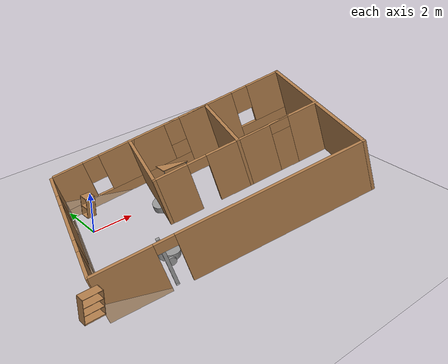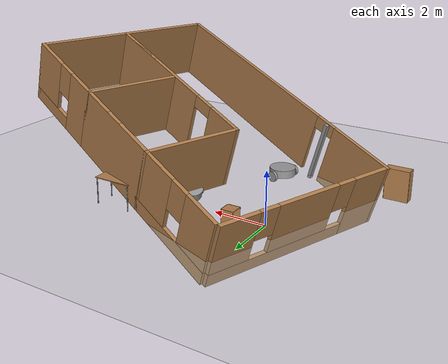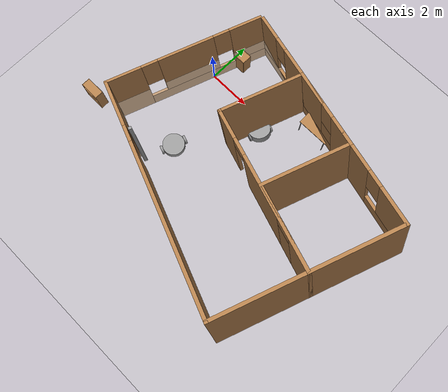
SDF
<sdf version="1.6">
 <world name="default">
  <plugin name="hello" filename="libhello.so"/>
  <light name="sun" type="directional">
   <pose>0 0 10 0 -0 0</pose>
   <diffuse>0.8 0.8 0.8 1</diffuse>
   <specular>0.2 0.2 0.2 1</specular>
   <attenuation>
    <range>1000</range>
    <constant>0.9</constant>
    <linear>0.01</linear>
    <quadratic>0.001</quadratic>
   </attenuation>
   <direction>-0.5 0.1 -0.9</direction>
  </light>
  <model name="ground_plane">
   <static>1</static>
   <link name="link">
    <collision name="collision">
     <geometry><plane><normal>0 0 1</normal><size>100 100</size></plane></geometry>
     <surface>
      <contact><collide_bitmask>65535</collide_bitmask></contact>
      <friction><ode><mu>100</mu><mu2>50</mu2></ode></friction>
     </surface>
    </collision>
    <visual name="visual">
     <cast_shadows>0</cast_shadows>
     <geometry><plane><normal>0 0 1</normal><size>100 100</size></plane></geometry>
     <material>
      <script><uri>file://media/materials/scripts/gazebo.material</uri><name>Gazebo/Grey</name></script>
     </material>
    </visual>
   </link>
  </model>
  <gravity>0 0 -9.8</gravity>
  <magnetic_field>6e-06 2.3e-05 -4.2e-05</magnetic_field>
  <atmosphere type="adiabatic"/>
  <physics name="default_physics" default="0" type="ode">
   <max_step_size>0.001</max_step_size>
   <real_time_factor>1</real_time_factor>
   <real_time_update_rate>1000</real_time_update_rate>
  </physics>
  <scene><ambient>0.4 0.4 0.4 1</ambient><background>0.7 0.7 0.7 1</background><shadows>1</shadows></scene>
  <spherical_coordinates>
   <surface_model>EARTH_WGS84</surface_model>
   <latitude_deg>0</latitude_deg>
   <longitude_deg>0</longitude_deg>
   <elevation>0</elevation>
   <heading_deg>0</heading_deg>
  </spherical_coordinates>
  <model name="model_0">
   <link name="link_1">
    <pose>-0.541361 0.667486 0.5125 -0 -0 -0</pose>
    <inertial>
     <mass>1</mass>
     <inertia><ixx>0.145833</ixx><ixy>0</ixy><ixz>0</ixz><iyy>0.145833</iyy><iyz>0</iyz><izz>0.125</izz></inertia>
    </inertial>
    <visual name="visual">
     <geometry><cylinder><radius>0.5</radius><length>0.3</length></cylinder></geometry>
     <material>
      <lighting>1</lighting>
      <script><uri>file://media/materials/scripts/gazebo.material</uri><name>Gazebo/Grey</name></script>
      <shader type="pixel"><normal_map>__default__</normal_map></shader>
      <ambient>0.3 0.3 0.3 1</ambient>
      <diffuse>0.7 0.7 0.7 1</diffuse>
      <specular>0.01 0.01 0.01 1</specular>
      <emissive>0 0 0 1</emissive>
     </material>
    </visual>
    <collision name="collision">
     <geometry><cylinder><radius>0.5</radius><length>0.3</length></cylinder></geometry>
     <surface>
      <friction>
       <ode><mu>1</mu><mu2>1</mu2><fdir1>0 0 0</fdir1><slip1>0</slip1><slip2>0</slip2></ode>
       <torsional>
        <coefficient>1</coefficient>
        <patch_radius>0</patch_radius>
        <surface_radius>0</surface_radius>
        <use_patch_radius>1</use_patch_radius>
        <ode><slip>0</slip></ode>
       </torsional>
      </friction>
      <bounce><restitution_coefficient>0</restitution_coefficient><threshold>1e+06</threshold></bounce>
      <contact>
       <collide_without_contact>0</collide_without_contact>
       <collide_without_contact_bitmask>1</collide_without_contact_bitmask>
       <collide_bitmask>1</collide_bitmask>
       <ode>
        <soft_cfm>0</soft_cfm>
        <soft_erp>0.2</soft_erp>
        <kp>1e+13</kp>
        <kd>1</kd>
        <max_vel>0.01</max_vel>
        <min_depth>0</min_depth>
       </ode>
       <bullet>
        <split_impulse>1</split_impulse>
        <split_impulse_penetration_threshold>-0.01</split_impulse_penetration_threshold>
        <soft_cfm>0</soft_cfm>
        <soft_erp>0.2</soft_erp>
        <kp>1e+13</kp>
        <kd>1</kd>
       </bullet>
      </contact>
     </surface>
    </collision>
   </link>
   <link name="link_1_clone">
    <pose>-1.4209 -3.11273 0.992718 0.000928 0.309661 0.003044</pose>
    <inertial>
     <mass>1</mass>
     <inertia><ixx>0.145833</ixx><ixy>0</ixy><ixz>0</ixz><iyy>0.145833</iyy><iyz>0</iyz><izz>0.125</izz></inertia>
    </inertial>
    <visual name="visual">
     <geometry><cylinder><radius>0.5</radius><length>0.3</length></cylinder></geometry>
     <material>
      <lighting>1</lighting>
      <script><uri>file://media/materials/scripts/gazebo.material</uri><name>Gazebo/Grey</name></script>
      <shader type="pixel"><normal_map>__default__</normal_map></shader>
      <ambient>0.3 0.3 0.3 1</ambient>
      <diffuse>0.7 0.7 0.7 1</diffuse>
      <specular>0.01 0.01 0.01 1</specular>
      <emissive>0 0 0 1</emissive>
     </material>
    </visual>
    <collision name="collision">
     <geometry><cylinder><radius>0.5</radius><length>0.3</length></cylinder></geometry>
     <surface>
      <friction>
       <ode><mu>1</mu><mu2>1</mu2><fdir1>0 0 0</fdir1><slip1>0</slip1><slip2>0</slip2></ode>
       <torsional>
        <coefficient>1</coefficient>
        <patch_radius>0</patch_radius>
        <surface_radius>0</surface_radius>
        <use_patch_radius>1</use_patch_radius>
        <ode><slip>0</slip></ode>
       </torsional>
      </friction>
      <bounce><restitution_coefficient>0</restitution_coefficient><threshold>1e+06</threshold></bounce>
      <contact>
       <collide_without_contact>0</collide_without_contact>
       <collide_without_contact_bitmask>1</collide_without_contact_bitmask>
       <collide_bitmask>1</collide_bitmask>
       <ode>
        <soft_cfm>0</soft_cfm>
        <soft_erp>0.2</soft_erp>
        <kp>1e+13</kp>
        <kd>1</kd>
        <max_vel>0.01</max_vel>
        <min_depth>0</min_depth>
       </ode>
       <bullet>
        <split_impulse>1</split_impulse>
        <split_impulse_penetration_threshold>-0.01</split_impulse_penetration_threshold>
        <soft_cfm>0</soft_cfm>
        <soft_erp>0.2</soft_erp>
        <kp>1e+13</kp>
        <kd>1</kd>
       </bullet>
      </contact>
     </surface>
    </collision>
   </link>
   <link name="link_2">
    <pose>-0.541361 1.16749 0.4125 1.5707 -0 0</pose>
    <inertial>
     <mass>1</mass>
     <inertia><ixx>0.145833</ixx><ixy>0</ixy><ixz>0</ixz><iyy>0.145833</iyy><iyz>0</iyz><izz>0.125</izz></inertia>
    </inertial>
    <visual name="visual">
     <geometry><cylinder><radius>0.2</radius><length>0.1</length></cylinder></geometry>
     <material>
      <lighting>1</lighting>
      <script><uri>file://media/materials/scripts/gazebo.material</uri><name>Gazebo/Grey</name></script>
      <shader type="pixel"><normal_map>__default__</normal_map></shader>
      <ambient>0.3 0.3 0.3 1</ambient>
      <diffuse>0.7 0.7 0.7 1</diffuse>
      <specular>0.01 0.01 0.01 1</specular>
      <emissive>0 0 0 1</emissive>
     </material>
    </visual>
    <collision name="collision">
     <geometry><cylinder><radius>0.2</radius><length>0.1</length></cylinder></geometry>
     <surface>
      <friction>
       <ode><mu>1</mu><mu2>1</mu2><fdir1>0 0 0</fdir1><slip1>0</slip1><slip2>0</slip2></ode>
       <torsional>
        <coefficient>1</coefficient>
        <patch_radius>0</patch_radius>
        <surface_radius>0</surface_radius>
        <use_patch_radius>1</use_patch_radius>
        <ode><slip>0</slip></ode>
       </torsional>
      </friction>
      <bounce><restitution_coefficient>0</restitution_coefficient><threshold>1e+06</threshold></bounce>
      <contact>
       <collide_without_contact>0</collide_without_contact>
       <collide_without_contact_bitmask>1</collide_without_contact_bitmask>
       <collide_bitmask>1</collide_bitmask>
       <ode>
        <soft_cfm>0</soft_cfm>
        <soft_erp>0.2</soft_erp>
        <kp>1e+13</kp>
        <kd>1</kd>
        <max_vel>0.01</max_vel>
        <min_depth>0</min_depth>
       </ode>
       <bullet>
        <split_impulse>1</split_impulse>
        <split_impulse_penetration_threshold>-0.01</split_impulse_penetration_threshold>
        <soft_cfm>0</soft_cfm>
        <soft_erp>0.2</soft_erp>
        <kp>1e+13</kp>
        <kd>1</kd>
       </bullet>
      </contact>
     </surface>
    </collision>
   </link>
   <link name="link_2_clone_0">
    <pose>-0.541361 0.167486 0.4125 1.5707 -0 0</pose>
    <inertial>
     <mass>1</mass>
     <inertia><ixx>0.145833</ixx><ixy>0</ixy><ixz>0</ixz><iyy>0.145833</iyy><iyz>0</iyz><izz>0.125</izz></inertia>
    </inertial>
    <visual name="visual">
     <geometry><cylinder><radius>0.2</radius><length>0.1</length></cylinder></geometry>
     <material>
      <lighting>1</lighting>
      <script><uri>file://media/materials/scripts/gazebo.material</uri><name>Gazebo/Grey</name></script>
      <shader type="pixel"><normal_map>__default__</normal_map></shader>
      <ambient>0.3 0.3 0.3 1</ambient>
      <diffuse>0.7 0.7 0.7 1</diffuse>
      <specular>0.01 0.01 0.01 1</specular>
      <emissive>0 0 0 1</emissive>
     </material>
    </visual>
    <collision name="collision">
     <geometry><cylinder><radius>0.2</radius><length>0.1</length></cylinder></geometry>
     <surface>
      <friction>
       <ode><mu>1</mu><mu2>1</mu2><fdir1>0 0 0</fdir1><slip1>0</slip1><slip2>0</slip2></ode>
       <torsional>
        <coefficient>1</coefficient>
        <patch_radius>0</patch_radius>
        <surface_radius>0</surface_radius>
        <use_patch_radius>1</use_patch_radius>
        <ode><slip>0</slip></ode>
       </torsional>
      </friction>
      <bounce><restitution_coefficient>0</restitution_coefficient><threshold>1e+06</threshold></bounce>
      <contact>
       <collide_without_contact>0</collide_without_contact>
       <collide_without_contact_bitmask>1</collide_without_contact_bitmask>
       <collide_bitmask>1</collide_bitmask>
       <ode>
        <soft_cfm>0</soft_cfm>
        <soft_erp>0.2</soft_erp>
        <kp>1e+13</kp>
        <kd>1</kd>
        <max_vel>0.01</max_vel>
        <min_depth>0</min_depth>
       </ode>
       <bullet>
        <split_impulse>1</split_impulse>
        <split_impulse_penetration_threshold>-0.01</split_impulse_penetration_threshold>
        <soft_cfm>0</soft_cfm>
        <soft_erp>0.2</soft_erp>
        <kp>1e+13</kp>
        <kd>1</kd>
       </bullet>
      </contact>
     </surface>
    </collision>
   </link>
   <link name="link_2_clone_0_clone">
    <pose>-1.4977 -3.6629 0.912299 1.57163 0.30966 0.003044</pose>
    <inertial>
     <mass>1</mass>
     <inertia><ixx>0.145833</ixx><ixy>0</ixy><ixz>0</ixz><iyy>0.145833</iyy><iyz>0</iyz><izz>0.125</izz></inertia>
    </inertial>
    <visual name="visual">
     <geometry><cylinder><radius>0.2</radius><length>0.1</length></cylinder></geometry>
     <material>
      <lighting>1</lighting>
      <script><uri>file://media/materials/scripts/gazebo.material</uri><name>Gazebo/Grey</name></script>
      <shader type="pixel"><normal_map>__default__</normal_map></shader>
      <ambient>0.3 0.3 0.3 1</ambient>
      <diffuse>0.7 0.7 0.7 1</diffuse>
      <specular>0.01 0.01 0.01 1</specular>
      <emissive>0 0 0 1</emissive>
     </material>
    </visual>
    <collision name="collision">
     <geometry><cylinder><radius>0.2</radius><length>0.1</length></cylinder></geometry>
     <surface>
      <friction>
       <ode><mu>1</mu><mu2>1</mu2><fdir1>0 0 0</fdir1><slip1>0</slip1><slip2>0</slip2></ode>
       <torsional>
        <coefficient>1</coefficient>
        <patch_radius>0</patch_radius>
        <surface_radius>0</surface_radius>
        <use_patch_radius>1</use_patch_radius>
        <ode><slip>0</slip></ode>
       </torsional>
      </friction>
      <bounce><restitution_coefficient>0</restitution_coefficient><threshold>1e+06</threshold></bounce>
      <contact>
       <collide_without_contact>0</collide_without_contact>
       <collide_without_contact_bitmask>1</collide_without_contact_bitmask>
       <collide_bitmask>1</collide_bitmask>
       <ode>
        <soft_cfm>0</soft_cfm>
        <soft_erp>0.2</soft_erp>
        <kp>1e+13</kp>
        <kd>1</kd>
        <max_vel>0.01</max_vel>
        <min_depth>0</min_depth>
       </ode>
       <bullet>
        <split_impulse>1</split_impulse>
        <split_impulse_penetration_threshold>-0.01</split_impulse_penetration_threshold>
        <soft_cfm>0</soft_cfm>
        <soft_erp>0.2</soft_erp>
        <kp>1e+13</kp>
        <kd>1</kd>
       </bullet>
      </contact>
     </surface>
    </collision>
   </link>
   <link name="link_2_clone_0_clone_0">
    <pose>-1.50568 -2.56288 0.914854 1.57163 0.30966 0.003044</pose>
    <inertial>
     <mass>1</mass>
     <inertia><ixx>0.145833</ixx><ixy>0</ixy><ixz>0</ixz><iyy>0.145833</iyy><iyz>0</iyz><izz>0.125</izz></inertia>
    </inertial>
    <visual name="visual">
     <geometry><cylinder><radius>0.2</radius><length>0.1</length></cylinder></geometry>
     <material>
      <lighting>1</lighting>
      <script><uri>file://media/materials/scripts/gazebo.material</uri><name>Gazebo/Grey</name></script>
      <shader type="pixel"><normal_map>__default__</normal_map></shader>
      <ambient>0.3 0.3 0.3 1</ambient>
      <diffuse>0.7 0.7 0.7 1</diffuse>
      <specular>0.01 0.01 0.01 1</specular>
      <emissive>0 0 0 1</emissive>
     </material>
    </visual>
    <collision name="collision">
     <geometry><cylinder><radius>0.2</radius><length>0.1</length></cylinder></geometry>
     <surface>
      <friction>
       <ode><mu>1</mu><mu2>1</mu2><fdir1>0 0 0</fdir1><slip1>0</slip1><slip2>0</slip2></ode>
       <torsional>
        <coefficient>1</coefficient>
        <patch_radius>0</patch_radius>
        <surface_radius>0</surface_radius>
        <use_patch_radius>1</use_patch_radius>
        <ode><slip>0</slip></ode>
       </torsional>
      </friction>
      <bounce><restitution_coefficient>0</restitution_coefficient><threshold>1e+06</threshold></bounce>
      <contact>
       <collide_without_contact>0</collide_without_contact>
       <collide_without_contact_bitmask>1</collide_without_contact_bitmask>
       <collide_bitmask>1</collide_bitmask>
       <ode>
        <soft_cfm>0</soft_cfm>
        <soft_erp>0.2</soft_erp>
        <kp>1e+13</kp>
        <kd>1</kd>
        <max_vel>0.01</max_vel>
        <min_depth>0</min_depth>
       </ode>
       <bullet>
        <split_impulse>1</split_impulse>
        <split_impulse_penetration_threshold>-0.01</split_impulse_penetration_threshold>
        <soft_cfm>0</soft_cfm>
        <soft_erp>0.2</soft_erp>
        <kp>1e+13</kp>
        <kd>1</kd>
       </bullet>
      </contact>
     </surface>
    </collision>
   </link>
   <model name="model">
    <pose>1.26807 -0.87112 0.4625 -0 -0 -0</pose>
    <link name="Wall_11">
     <pose>0 -3.85 0 0 -0 0</pose>
     <visual name="Wall_11_Visual_0">
      <pose>-4.61809 0 1.25 0 -0 0</pose>
      <geometry><box><size>2.76382 0.15 2.5</size></box></geometry>
      <material>
       <script><uri>file://media/materials/scripts/gazebo.material</uri><name>Gazebo/Wood</name></script>
       <ambient>1 1 1 1</ambient>
      </material>
      <meta><layer>0</layer></meta>
     </visual>
     <collision name="Wall_11_Collision_0">
      <geometry><box><size>2.76382 0.15 2.5</size></box></geometry>
      <pose>-4.61809 0 1.25 0 -0 0</pose>
     </collision>
     <visual name="Wall_11_Visual_1">
      <pose>1.83191 0 1.25 0 -0 0</pose>
      <geometry><box><size>8.33618 0.15 2.5</size></box></geometry>
      <material>
       <script><uri>file://media/materials/scripts/gazebo.material</uri><name>Gazebo/Wood</name></script>
       <ambient>1 1 1 1</ambient>
      </material>
      <meta><layer>0</layer></meta>
     </visual>
     <collision name="Wall_11_Collision_1">
      <geometry><box><size>8.33618 0.15 2.5</size></box></geometry>
      <pose>1.83191 0 1.25 0 -0 0</pose>
     </collision>
     <visual name="Wall_11_Visual_2">
      <pose>-2.78618 0 2.25 0 -0 0</pose>
      <geometry><box><size>0.9 0.15 0.5</size></box></geometry>
      <material>
       <script><uri>file://media/materials/scripts/gazebo.material</uri><name>Gazebo/Wood</name></script>
       <ambient>1 1 1 1</ambient>
      </material>
      <meta><layer>0</layer></meta>
     </visual>
     <collision name="Wall_11_Collision_2">
      <geometry><box><size>0.9 0.15 0.5</size></box></geometry>
      <pose>-2.78618 0 2.25 0 -0 0</pose>
     </collision>
    </link>
    <link name="Wall_12">
     <collision name="Wall_12_Collision">
      <geometry><box><size>4 0.15 2.5</size></box></geometry>
      <pose>0 0 1.25 0 -0 0</pose>
     </collision>
     <visual name="Wall_12_Visual">
      <pose>0 0 1.25 0 -0 0</pose>
      <geometry><box><size>4 0.15 2.5</size></box></geometry>
      <material>
       <script><uri>file://media/materials/scripts/gazebo.material</uri><name>Gazebo/Wood</name></script>
       <ambient>1 1 1 1</ambient>
      </material>
      <meta><layer>0</layer></meta>
     </visual>
     <pose>5.925 -1.925 0 0 -0 1.5708</pose>
    </link>
    <link name="Wall_13">
     <collision name="Wall_13_Collision">
      <geometry><box><size>4 0.15 2.5</size></box></geometry>
      <pose>0 0 1.25 0 -0 0</pose>
     </collision>
     <visual name="Wall_13_Visual">
      <pose>0 0 1.25 0 -0 0</pose>
      <geometry><box><size>4 0.15 2.5</size></box></geometry>
      <material>
       <script><uri>file://media/materials/scripts/gazebo.material</uri><name>Gazebo/Wood</name></script>
       <ambient>1 1 1 1</ambient>
      </material>
      <meta><layer>0</layer></meta>
     </visual>
     <pose>4 0 0 0 -0 3.14159</pose>
    </link>
    <link name="Wall_14">
     <collision name="Wall_14_Collision">
      <geometry><box><size>4 0.15 2.5</size></box></geometry>
      <pose>0 0 1.25 0 -0 0</pose>
     </collision>
     <visual name="Wall_14_Visual">
      <pose>0 0 1.25 0 -0 0</pose>
      <geometry><box><size>4 0.15 2.5</size></box></geometry>
      <material>
       <script><uri>file://media/materials/scripts/gazebo.material</uri><name>Gazebo/Wood</name></script>
       <ambient>1 1 1 1</ambient>
      </material>
      <meta><layer>0</layer></meta>
     </visual>
     <pose>2.075 1.925 0 0 -0 1.5708</pose>
    </link>
    <link name="Wall_15">
     <pose>4 3.85 0 0 -0 0</pose>
     <visual name="Wall_15_Visual_0">
      <pose>-1.28136 0 1.25 0 -0 0</pose>
      <geometry><box><size>1.43727 0.15 2.5</size></box></geometry>
      <material>
       <script><uri>file://media/materials/scripts/gazebo.material</uri><name>Gazebo/Wood</name></script>
       <ambient>1 1 1 1</ambient>
      </material>
      <meta><layer>0</layer></meta>
     </visual>
     <collision name="Wall_15_Collision_0">
      <geometry><box><size>1.43727 0.15 2.5</size></box></geometry>
      <pose>-1.28136 0 1.25 0 -0 0</pose>
     </collision>
     <visual name="Wall_15_Visual_1">
      <pose>0.718636 0 0.25 0 -0 0</pose>
      <geometry><box><size>2.56273 0.15 0.5</size></box></geometry>
      <material>
       <script><uri>file://media/materials/scripts/gazebo.material</uri><name>Gazebo/Wood</name></script>
       <ambient>1 1 1 1</ambient>
      </material>
      <meta><layer>0</layer></meta>
     </visual>
     <collision name="Wall_15_Collision_1">
      <geometry><box><size>2.56273 0.15 0.5</size></box></geometry>
      <pose>0.718636 0 0.25 0 -0 0</pose>
     </collision>
     <visual name="Wall_15_Visual_2">
      <pose>1.11864 0 1.5 0 -0 0</pose>
      <geometry><box><size>1.76273 0.15 2</size></box></geometry>
      <material>
       <script><uri>file://media/materials/scripts/gazebo.material</uri><name>Gazebo/Wood</name></script>
       <ambient>1 1 1 1</ambient>
      </material>
      <meta><layer>0</layer></meta>
     </visual>
     <collision name="Wall_15_Collision_2">
      <geometry><box><size>1.76273 0.15 2</size></box></geometry>
      <pose>1.11864 0 1.5 0 -0 0</pose>
     </collision>
     <visual name="Wall_15_Visual_3">
      <pose>-0.162727 0 1.9 0 -0 0</pose>
      <geometry><box><size>0.8 0.15 1.2</size></box></geometry>
      <material>
       <script><uri>file://media/materials/scripts/gazebo.material</uri><name>Gazebo/Wood</name></script>
       <ambient>1 1 1 1</ambient>
      </material>
      <meta><layer>0</layer></meta>
     </visual>
     <collision name="Wall_15_Collision_3">
      <geometry><box><size>0.8 0.15 1.2</size></box></geometry>
      <pose>-0.162727 0 1.9 0 -0 0</pose>
     </collision>
    </link>
    <link name="Wall_16">
     <collision name="Wall_16_Collision">
      <geometry><box><size>4 0.15 2.5</size></box></geometry>
      <pose>0 0 1.25 0 -0 0</pose>
     </collision>
     <visual name="Wall_16_Visual">
      <pose>0 0 1.25 0 -0 0</pose>
      <geometry><box><size>4 0.15 2.5</size></box></geometry>
      <material>
       <script><uri>file://media/materials/scripts/gazebo.material</uri><name>Gazebo/Wood</name></script>
       <ambient>1 1 1 1</ambient>
      </material>
      <meta><layer>0</layer></meta>
     </visual>
     <pose>5.925 1.925 0 0 0 -1.5708</pose>
    </link>
    <link name="Wall_17">
     <pose>2 0 0 0 -0 3.14159</pose>
     <visual name="Wall_17_Visual_0">
      <pose>-3.25004 0 1.25 0 -0 0</pose>
      <geometry><box><size>1.49992 0.15 2.5</size></box></geometry>
      <material>
       <script><uri>file://media/materials/scripts/gazebo.material</uri><name>Gazebo/Wood</name></script>
       <ambient>1 1 1 1</ambient>
      </material>
      <meta><layer>0</layer></meta>
     </visual>
     <collision name="Wall_17_Collision_0">
      <geometry><box><size>1.49992 0.15 2.5</size></box></geometry>
      <pose>-3.25004 0 1.25 0 -0 0</pose>
     </collision>
     <visual name="Wall_17_Visual_1">
      <pose>-0.06836 0 1.25 0 -0 0</pose>
      <geometry><box><size>3.06343 0.15 2.5</size></box></geometry>
      <material>
       <script><uri>file://media/materials/scripts/gazebo.material</uri><name>Gazebo/Wood</name></script>
       <ambient>1 1 1 1</ambient>
      </material>
      <meta><layer>0</layer></meta>
     </visual>
     <collision name="Wall_17_Collision_1">
      <geometry><box><size>3.06343 0.15 2.5</size></box></geometry>
      <pose>-0.06836 0 1.25 0 -0 0</pose>
     </collision>
     <visual name="Wall_17_Visual_2">
      <pose>3.18168 0 1.25 0 -0 0</pose>
      <geometry><box><size>1.63664 0.15 2.5</size></box></geometry>
      <material>
       <script><uri>file://media/materials/scripts/gazebo.material</uri><name>Gazebo/Wood</name></script>
       <ambient>1 1 1 1</ambient>
      </material>
      <meta><layer>0</layer></meta>
     </visual>
     <collision name="Wall_17_Collision_2">
      <geometry><box><size>1.63664 0.15 2.5</size></box></geometry>
      <pose>3.18168 0 1.25 0 -0 0</pose>
     </collision>
     <visual name="Wall_17_Visual_3">
      <pose>-2.05008 0 2.25 0 -0 0</pose>
      <geometry><box><size>0.9 0.15 0.5</size></box></geometry>
      <material>
       <script><uri>file://media/materials/scripts/gazebo.material</uri><name>Gazebo/Wood</name></script>
       <ambient>1 1 1 1</ambient>
      </material>
      <meta><layer>0</layer></meta>
     </visual>
     <collision name="Wall_17_Collision_3">
      <geometry><box><size>0.9 0.15 0.5</size></box></geometry>
      <pose>-2.05008 0 2.25 0 -0 0</pose>
     </collision>
     <visual name="Wall_17_Visual_4">
      <pose>1.91335 0 2.25 0 -0 0</pose>
      <geometry><box><size>0.9 0.15 0.5</size></box></geometry>
      <material>
       <script><uri>file://media/materials/scripts/gazebo.material</uri><name>Gazebo/Wood</name></script>
       <ambient>1 1 1 1</ambient>
      </material>
      <meta><layer>0</layer></meta>
     </visual>
     <collision name="Wall_17_Collision_4">
      <geometry><box><size>0.9 0.15 0.5</size></box></geometry>
      <pose>1.91335 0 2.25 0 -0 0</pose>
     </collision>
    </link>
    <link name="Wall_18">
     <collision name="Wall_18_Collision">
      <geometry><box><size>4 0.15 2.5</size></box></geometry>
      <pose>0 0 1.25 0 -0 0</pose>
     </collision>
     <visual name="Wall_18_Visual">
      <pose>0 0 1.25 0 -0 0</pose>
      <geometry><box><size>4 0.15 2.5</size></box></geometry>
      <material>
       <script><uri>file://media/materials/scripts/gazebo.material</uri><name>Gazebo/Wood</name></script>
       <ambient>1 1 1 1</ambient>
      </material>
      <meta><layer>0</layer></meta>
     </visual>
     <pose>-1.925 1.925 0 0 -0 1.5708</pose>
    </link>
    <link name="Wall_19">
     <collision name="Wall_19_Collision">
      <geometry><box><size>4.15 0.15 2.5</size></box></geometry>
      <pose>0 0 1.25 0 -0 0</pose>
     </collision>
     <visual name="Wall_19_Visual">
      <pose>0 0 1.25 0 -0 0</pose>
      <geometry><box><size>4.15 0.15 2.5</size></box></geometry>
      <material>
       <script><uri>file://media/materials/scripts/gazebo.material</uri><name>Gazebo/Wood</name></script>
       <ambient>1 1 1 1</ambient>
      </material>
      <meta><layer>0</layer></meta>
     </visual>
     <pose>0.075 3.85 0 0 -0 0</pose>
    </link>
    <link name="Wall_20">
     <pose>-1.85 3.85 0 0 -0 3.14159</pose>
     <visual name="Wall_20_Visual_0">
      <pose>-3.24812 0 1.25 0 -0 0</pose>
      <geometry><box><size>1.50375 0.15 2.5</size></box></geometry>
      <material>
       <script><uri>file://media/materials/scripts/gazebo.material</uri><name>Gazebo/Wood</name></script>
       <ambient>1 1 1 1</ambient>
      </material>
      <meta><layer>0</layer></meta>
     </visual>
     <collision name="Wall_20_Collision_0">
      <geometry><box><size>1.50375 0.15 2.5</size></box></geometry>
      <pose>-3.24812 0 1.25 0 -0 0</pose>
     </collision>
     <visual name="Wall_20_Visual_1">
      <pose>0.751877 0 0.25 0 -0 0</pose>
      <geometry><box><size>6.49625 0.15 0.5</size></box></geometry>
      <material>
       <script><uri>file://media/materials/scripts/gazebo.material</uri><name>Gazebo/Wood</name></script>
       <ambient>1 1 1 1</ambient>
      </material>
      <meta><layer>0</layer></meta>
     </visual>
     <collision name="Wall_20_Collision_1">
      <geometry><box><size>6.49625 0.15 0.5</size></box></geometry>
      <pose>0.751877 0 0.25 0 -0 0</pose>
     </collision>
     <visual name="Wall_20_Visual_2">
      <pose>-0.008131 0 1.5 0 -0 0</pose>
      <geometry><box><size>3.37623 0.15 2</size></box></geometry>
      <material>
       <script><uri>file://media/materials/scripts/gazebo.material</uri><name>Gazebo/Wood</name></script>
       <ambient>1 1 1 1</ambient>
      </material>
      <meta><layer>0</layer></meta>
     </visual>
     <collision name="Wall_20_Collision_2">
      <geometry><box><size>3.37623 0.15 2</size></box></geometry>
      <pose>-0.008131 0 1.5 0 -0 0</pose>
     </collision>
     <visual name="Wall_20_Visual_3">
      <pose>3.23999 0 1.5 0 -0 0</pose>
      <geometry><box><size>1.52001 0.15 2</size></box></geometry>
      <material>
       <script><uri>file://media/materials/scripts/gazebo.material</uri><name>Gazebo/Wood</name></script>
       <ambient>1 1 1 1</ambient>
      </material>
      <meta><layer>0</layer></meta>
     </visual>
     <collision name="Wall_20_Collision_3">
      <geometry><box><size>1.52001 0.15 2</size></box></geometry>
      <pose>3.23999 0 1.5 0 -0 0</pose>
     </collision>
     <visual name="Wall_20_Visual_4">
      <pose>-2.09625 0 1.9 0 -0 0</pose>
      <geometry><box><size>0.8 0.15 1.2</size></box></geometry>
      <material>
       <script><uri>file://media/materials/scripts/gazebo.material</uri><name>Gazebo/Wood</name></script>
       <ambient>1 1 1 1</ambient>
      </material>
      <meta><layer>0</layer></meta>
     </visual>
     <collision name="Wall_20_Collision_4">
      <geometry><box><size>0.8 0.15 1.2</size></box></geometry>
      <pose>-2.09625 0 1.9 0 -0 0</pose>
     </collision>
     <visual name="Wall_20_Visual_5">
      <pose>2.07999 0 1.9 0 -0 0</pose>
      <geometry><box><size>0.8 0.15 1.2</size></box></geometry>
      <material>
       <script><uri>file://media/materials/scripts/gazebo.material</uri><name>Gazebo/Wood</name></script>
       <ambient>1 1 1 1</ambient>
      </material>
      <meta><layer>0</layer></meta>
     </visual>
     <collision name="Wall_20_Collision_5">
      <geometry><box><size>0.8 0.15 1.2</size></box></geometry>
      <pose>2.07999 0 1.9 0 -0 0</pose>
     </collision>
    </link>
    <link name="Wall_23">
     <pose>-5.925 -0.05 0 0 -0 1.5708</pose>
     <visual name="Wall_23_Visual_0">
      <pose>-2.98532 0 1.25 0 -0 0</pose>
      <geometry><box><size>1.77936 0.15 2.5</size></box></geometry>
      <material>
       <script><uri>file://media/materials/scripts/gazebo.material</uri><name>Gazebo/Wood</name></script>
       <ambient>1 1 1 1</ambient>
      </material>
      <meta><layer>0</layer></meta>
     </visual>
     <collision name="Wall_23_Collision_0">
      <geometry><box><size>1.77936 0.15 2.5</size></box></geometry>
      <pose>-2.98532 0 1.25 0 -0 0</pose>
     </collision>
     <visual name="Wall_23_Visual_1">
      <pose>0.889679 0 0.25 0 -0 0</pose>
      <geometry><box><size>5.97064 0.15 0.5</size></box></geometry>
      <material>
       <script><uri>file://media/materials/scripts/gazebo.material</uri><name>Gazebo/Wood</name></script>
       <ambient>1 1 1 1</ambient>
      </material>
      <meta><layer>0</layer></meta>
     </visual>
     <collision name="Wall_23_Collision_1">
      <geometry><box><size>5.97064 0.15 0.5</size></box></geometry>
      <pose>0.889679 0 0.25 0 -0 0</pose>
     </collision>
     <visual name="Wall_23_Visual_2">
      <pose>0.07327 0 1.5 0 -0 0</pose>
      <geometry><box><size>2.73783 0.15 2</size></box></geometry>
      <material>
       <script><uri>file://media/materials/scripts/gazebo.material</uri><name>Gazebo/Wood</name></script>
       <ambient>1 1 1 1</ambient>
      </material>
      <meta><layer>0</layer></meta>
     </visual>
     <collision name="Wall_23_Collision_2">
      <geometry><box><size>2.73783 0.15 2</size></box></geometry>
      <pose>0.07327 0 1.5 0 -0 0</pose>
     </collision>
     <visual name="Wall_23_Visual_3">
      <pose>3.05859 0 1.5 0 -0 0</pose>
      <geometry><box><size>1.63282 0.15 2</size></box></geometry>
      <material>
       <script><uri>file://media/materials/scripts/gazebo.material</uri><name>Gazebo/Wood</name></script>
       <ambient>1 1 1 1</ambient>
      </material>
      <meta><layer>0</layer></meta>
     </visual>
     <collision name="Wall_23_Collision_3">
      <geometry><box><size>1.63282 0.15 2</size></box></geometry>
      <pose>3.05859 0 1.5 0 -0 0</pose>
     </collision>
     <visual name="Wall_23_Visual_4">
      <pose>-1.69564 0 1.9 0 -0 0</pose>
      <geometry><box><size>0.8 0.15 1.2</size></box></geometry>
      <material>
       <script><uri>file://media/materials/scripts/gazebo.material</uri><name>Gazebo/Wood</name></script>
       <ambient>1 1 1 1</ambient>
      </material>
      <meta><layer>0</layer></meta>
     </visual>
     <collision name="Wall_23_Collision_4">
      <geometry><box><size>0.8 0.15 1.2</size></box></geometry>
      <pose>-1.69564 0 1.9 0 -0 0</pose>
     </collision>
     <visual name="Wall_23_Visual_5">
      <pose>1.84218 0 1.9 0 -0 0</pose>
      <geometry><box><size>0.8 0.15 1.2</size></box></geometry>
      <material>
       <script><uri>file://media/materials/scripts/gazebo.material</uri><name>Gazebo/Wood</name></script>
       <ambient>1 1 1 1</ambient>
      </material>
      <meta><layer>0</layer></meta>
     </visual>
     <collision name="Wall_23_Collision_5">
      <geometry><box><size>0.8 0.15 1.2</size></box></geometry>
      <pose>1.84218 0 1.9 0 -0 0</pose>
     </collision>
    </link>
    <link name="Wall_8">
     <collision name="Wall_8_Collision">
      <geometry><box><size>0.15 0.15 2.5</size></box></geometry>
      <pose>0 0 1.25 0 -0 0</pose>
     </collision>
     <visual name="Wall_8_Visual">
      <pose>0 0 1.25 0 -0 0</pose>
      <geometry><box><size>0.15 0.15 2.5</size></box></geometry>
      <material>
       <script><uri>file://media/materials/scripts/gazebo.material</uri><name>Gazebo/Grey</name></script>
       <ambient>1 1 1 1</ambient>
      </material>
      <meta><layer>0</layer></meta>
     </visual>
     <pose>-2.97238 -3.6532 0 0 -0 0</pose>
    </link>
    <static>1</static>
   </model>
   <joint name="link_1_JOINT_0" type="revolute">
    <parent>link_1</parent>
    <child>link_2</child>
    <axis>
     <xyz>0 0 1</xyz>
     <use_parent_model_frame>0</use_parent_model_frame>
     <limit>
      <lower>-1.79769e+308</lower>
      <upper>1.79769e+308</upper>
      <effort>-1</effort>
      <velocity>-1</velocity>
     </limit>
     <dynamics>
      <spring_reference>0</spring_reference>
      <spring_stiffness>0</spring_stiffness>
      <damping>0</damping>
      <friction>0</friction>
     </dynamics>
    </axis>
    <physics>
     <ode><limit><cfm>0</cfm><erp>0.2</erp></limit><suspension><cfm>0</cfm><erp>0.2</erp></suspension></ode>
    </physics>
   </joint>
   <joint name="link_1_JOINT_1" type="revolute">
    <parent>link_1</parent>
    <child>link_2_clone_0</child>
    <axis>
     <xyz>0 0 1</xyz>
     <use_parent_model_frame>0</use_parent_model_frame>
     <limit>
      <lower>-1.79769e+308</lower>
      <upper>1.79769e+308</upper>
      <effort>-1</effort>
      <velocity>-1</velocity>
     </limit>
     <dynamics>
      <spring_reference>0</spring_reference>
      <spring_stiffness>0</spring_stiffness>
      <damping>0</damping>
      <friction>0</friction>
     </dynamics>
    </axis>
    <physics>
     <ode><limit><cfm>0</cfm><erp>0.2</erp></limit><suspension><cfm>0</cfm><erp>0.2</erp></suspension></ode>
    </physics>
   </joint>
   <joint name="link_1_clone_JOINT_0" type="revolute">
    <parent>link_1_clone</parent>
    <child>link_2_clone_0_clone</child>
    <axis>
     <xyz>0 0 1</xyz>
     <use_parent_model_frame>0</use_parent_model_frame>
     <limit>
      <lower>-1.79769e+308</lower>
      <upper>1.79769e+308</upper>
      <effort>-1</effort>
      <velocity>-1</velocity>
     </limit>
     <dynamics>
      <spring_reference>0</spring_reference>
      <spring_stiffness>0</spring_stiffness>
      <damping>0</damping>
     </dynamics>
    </axis>
    <physics>
     <ode><limit><cfm>0</cfm><erp>0.2</erp></limit><suspension><cfm>0</cfm><erp>0.2</erp></suspension></ode>
    </physics>
   </joint>
   <joint name="link_1_clone_JOINT_1" type="revolute">
    <parent>link_1_clone</parent>
    <child>link_2_clone_0_clone_0</child>
    <axis>
     <xyz>0 0 1</xyz>
     <use_parent_model_frame>0</use_parent_model_frame>
     <limit>
      <lower>-1.79769e+308</lower>
      <upper>1.79769e+308</upper>
      <effort>-1</effort>
      <velocity>-1</velocity>
     </limit>
     <dynamics>
      <spring_reference>0</spring_reference>
      <spring_stiffness>0</spring_stiffness>
      <damping>0</damping>
     </dynamics>
    </axis>
    <physics>
     <ode><limit><cfm>0</cfm><erp>0.2</erp></limit><suspension><cfm>0</cfm><erp>0.2</erp></suspension></ode>
    </physics>
   </joint>
   <static>0</static>
   <pose>3.86868 -1.39679 -0.027883 0 -0.309693 -0.352428</pose>
  </model>
  <model name="bookshelf">
   <static>1</static>
   <link name="link">
    <inertial><mass>1</mass></inertial>
    <collision name="back">
     <pose>0 0.005 0.6 0 -0 0</pose>
     <geometry><box><size>0.9 0.01 1.2</size></box></geometry>
    </collision>
    <visual name="visual1">
     <pose>0 0.005 0.6 0 -0 0</pose>
     <geometry><box><size>0.9 0.01 1.2</size></box></geometry>
     <material>
      <script><uri>file://media/materials/scripts/gazebo.material</uri><name>Gazebo/Wood</name></script>
     </material>
    </visual>
    <collision name="left_side">
     <pose>0.45 -0.195 0.6 0 -0 0</pose>
     <geometry><box><size>0.02 0.4 1.2</size></box></geometry>
    </collision>
    <visual name="visual2">
     <pose>0.45 -0.195 0.6 0 -0 0</pose>
     <geometry><box><size>0.02 0.4 1.2</size></box></geometry>
     <material>
      <script><uri>file://media/materials/scripts/gazebo.material</uri><name>Gazebo/Wood</name></script>
     </material>
    </visual>
    <collision name="right_side">
     <pose>-0.45 -0.195 0.6 0 -0 0</pose>
     <geometry><box><size>0.02 0.4 1.2</size></box></geometry>
    </collision>
    <visual name="visual3">
     <pose>-0.45 -0.195 0.6 0 -0 0</pose>
     <geometry><box><size>0.02 0.4 1.2</size></box></geometry>
     <material>
      <script><uri>file://media/materials/scripts/gazebo.material</uri><name>Gazebo/Wood</name></script>
     </material>
    </visual>
    <collision name="bottom">
     <pose>0 -0.195 0.03 0 -0 0</pose>
     <geometry><box><size>0.88 0.4 0.06</size></box></geometry>
    </collision>
    <visual name="visual4">
     <pose>0 -0.195 0.03 0 -0 0</pose>
     <geometry><box><size>0.88 0.4 0.06</size></box></geometry>
     <material>
      <script><uri>file://media/materials/scripts/gazebo.material</uri><name>Gazebo/Wood</name></script>
     </material>
    </visual>
    <collision name="top">
     <pose>0 -0.195 1.19 0 -0 0</pose>
     <geometry><box><size>0.88 0.4 0.02</size></box></geometry>
    </collision>
    <visual name="visual5">
     <pose>0 -0.195 1.19 0 -0 0</pose>
     <geometry><box><size>0.88 0.4 0.02</size></box></geometry>
     <material>
      <script><uri>file://media/materials/scripts/gazebo.material</uri><name>Gazebo/Wood</name></script>
     </material>
    </visual>
    <collision name="low_shelf">
     <pose>0 -0.195 0.43 0 -0 0</pose>
     <geometry><box><size>0.88 0.4 0.02</size></box></geometry>
    </collision>
    <visual name="visual6">
     <pose>0 -0.195 0.43 0 -0 0</pose>
     <geometry><box><size>0.88 0.4 0.02</size></box></geometry>
     <material>
      <script><uri>file://media/materials/scripts/gazebo.material</uri><name>Gazebo/Wood</name></script>
     </material>
    </visual>
    <collision name="high_shelf">
     <pose>0 -0.195 0.8 0 -0 0</pose>
     <geometry><box><size>0.88 0.4 0.02</size></box></geometry>
    </collision>
    <visual name="visual7">
     <pose>0 -0.195 0.8 0 -0 0</pose>
     <geometry><box><size>0.88 0.4 0.02</size></box></geometry>
     <material>
      <script><uri>file://media/materials/scripts/gazebo.material</uri><name>Gazebo/Wood</name></script>
     </material>
    </visual>
   </link>
   <pose>-3.04162 -4.37733 0 0 -0 0</pose>
  </model>
  <model name="cabinet">
   <static>1</static>
   <link name="cabinet_bottom_plate">
    <inertial>
     <pose>0 0 -1 0 -0 0</pose>
     <inertia><ixx>2.05</ixx><ixy>0</ixy><ixz>0</ixz><iyy>2.05</iyy><iyz>0</iyz><izz>2.05</izz></inertia>
     <mass>25</mass>
    </inertial>
    <collision name="cabinet_bottom_plate_geom">
     <pose>0 0 0.01 0 -0 0</pose>
     <geometry><box><size>0.45 0.45 0.02</size></box></geometry>
    </collision>
    <visual name="cabinet_bottom_plate_geom_visual">
     <pose>0 0 0.01 0 -0 0</pose>
     <geometry><box><size>0.45 0.45 0.02</size></box></geometry>
     <material>
      <script><uri>file://media/materials/scripts/gazebo.material</uri><name>Gazebo/Wood</name></script>
     </material>
    </visual>
    <collision name="cabinet_bottom_plate_geom_cabinet_back_plate">
     <pose>0.235 0 0.51 0 -0 0</pose>
     <geometry><box><size>0.02 0.45 1.02</size></box></geometry>
    </collision>
    <visual name="cabinet_bottom_plate_geom_cabinet_back_plate_visual">
     <pose>0.235 0 0.51 0 -0 0</pose>
     <geometry><box><size>0.02 0.45 1.02</size></box></geometry>
     <material>
      <script><uri>file://media/materials/scripts/gazebo.material</uri><name>Gazebo/Wood</name></script>
     </material>
    </visual>
    <collision name="cabinet_bottom_plate_geom_cabinet_left_plate">
     <pose>0 0.235 0.51 0 -0 0</pose>
     <geometry><box><size>0.45 0.02 1.02</size></box></geometry>
    </collision>
    <visual name="cabinet_bottom_plate_geom_cabinet_left_plate_visual">
     <pose>0 0.235 0.51 0 -0 0</pose>
     <geometry><box><size>0.45 0.02 1.02</size></box></geometry>
     <material>
      <script><uri>file://media/materials/scripts/gazebo.material</uri><name>Gazebo/Wood</name></script>
     </material>
    </visual>
    <collision name="cabinet_bottom_plate_geom_cabinet_middle_plate">
     <pose>0 0 0.51 0 -0 0</pose>
     <geometry><box><size>0.45 0.45 0.02</size></box></geometry>
    </collision>
    <visual name="cabinet_bottom_plate_geom_cabinet_middle_plate_visual">
     <pose>0 0 0.51 0 -0 0</pose>
     <geometry><box><size>0.45 0.45 0.02</size></box></geometry>
     <material>
      <script><uri>file://media/materials/scripts/gazebo.material</uri><name>Gazebo/Wood</name></script>
     </material>
    </visual>
    <collision name="cabinet_bottom_plate_geom_cabinet_right_plate">
     <pose>0 -0.235 0.51 0 -0 0</pose>
     <geometry><box><size>0.45 0.02 1.02</size></box></geometry>
    </collision>
    <visual name="cabinet_bottom_plate_geom_cabinet_right_plate_visual">
     <pose>0 -0.235 0.51 0 -0 0</pose>
     <geometry><box><size>0.45 0.02 1.02</size></box></geometry>
     <material>
      <script><uri>file://media/materials/scripts/gazebo.material</uri><name>Gazebo/Wood</name></script>
     </material>
    </visual>
    <collision name="cabinet_bottom_plate_geom_cabinet_top_plate">
     <pose>0 0 1.01 0 -0 0</pose>
     <geometry><box><size>0.45 0.45 0.02</size></box></geometry>
    </collision>
    <visual name="cabinet_bottom_plate_geom_cabinet_top_plate_visual">
     <pose>0 0 1.01 0 -0 0</pose>
     <geometry><box><size>0.45 0.45 0.02</size></box></geometry>
     <material>
      <script><uri>file://media/materials/scripts/gazebo.material</uri><name>Gazebo/Wood</name></script>
     </material>
    </visual>
   </link>
   <pose>0.598343 1.32212 0 0 -0 0</pose>
  </model>
  <model name="table">
   <static>1</static>
   <link name="link">
    <collision name="surface">
     <pose>0 0 1 0 -0 0</pose>
     <geometry><box><size>1.5 0.8 0.03</size></box></geometry>
     <surface><friction><ode><mu>0.6</mu><mu2>0.6</mu2></ode></friction></surface>
    </collision>
    <visual name="visual1">
     <pose>0 0 1 0 -0 0</pose>
     <geometry><box><size>1.5 0.8 0.03</size></box></geometry>
     <material>
      <script><uri>file://media/materials/scripts/gazebo.material</uri><name>Gazebo/Wood</name></script>
     </material>
    </visual>
    <collision name="front_left_leg">
     <pose>0.68 0.38 0.5 0 -0 0</pose>
     <geometry><cylinder><radius>0.02</radius><length>1</length></cylinder></geometry>
    </collision>
    <visual name="front_left_leg">
     <pose>0.68 0.38 0.5 0 -0 0</pose>
     <geometry><cylinder><radius>0.02</radius><length>1</length></cylinder></geometry>
     <material>
      <script><uri>file://media/materials/scripts/gazebo.material</uri><name>Gazebo/Grey</name></script>
     </material>
    </visual>
    <collision name="front_right_leg">
     <pose>0.68 -0.38 0.5 0 -0 0</pose>
     <geometry><cylinder><radius>0.02</radius><length>1</length></cylinder></geometry>
    </collision>
    <visual name="front_right_leg">
     <pose>0.68 -0.38 0.5 0 -0 0</pose>
     <geometry><cylinder><radius>0.02</radius><length>1</length></cylinder></geometry>
     <material>
      <script><uri>file://media/materials/scripts/gazebo.material</uri><name>Gazebo/Grey</name></script>
     </material>
    </visual>
    <collision name="back_right_leg">
     <pose>-0.68 -0.38 0.5 0 -0 0</pose>
     <geometry><cylinder><radius>0.02</radius><length>1</length></cylinder></geometry>
    </collision>
    <visual name="back_right_leg">
     <pose>-0.68 -0.38 0.5 0 -0 0</pose>
     <geometry><cylinder><radius>0.02</radius><length>1</length></cylinder></geometry>
     <material>
      <script><uri>file://media/materials/scripts/gazebo.material</uri><name>Gazebo/Grey</name></script>
     </material>
    </visual>
    <collision name="back_left_leg">
     <pose>-0.68 0.38 0.5 0 -0 0</pose>
     <geometry><cylinder><radius>0.02</radius><length>1</length></cylinder></geometry>
    </collision>
    <visual name="back_left_leg">
     <pose>-0.68 0.38 0.5 0 -0 0</pose>
     <geometry><cylinder><radius>0.02</radius><length>1</length></cylinder></geometry>
     <material>
      <script><uri>file://media/materials/scripts/gazebo.material</uri><name>Gazebo/Grey</name></script>
     </material>
    </visual>
   </link>
   <pose>5.31759 1.2338 0 0 -0 0</pose>
  </model>
 </world>
</sdf>
